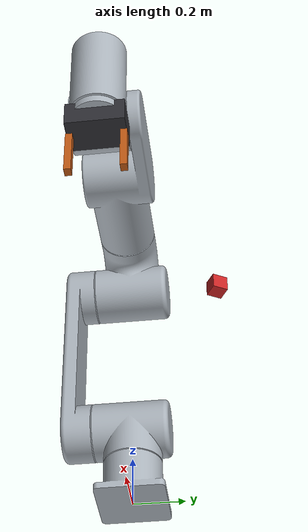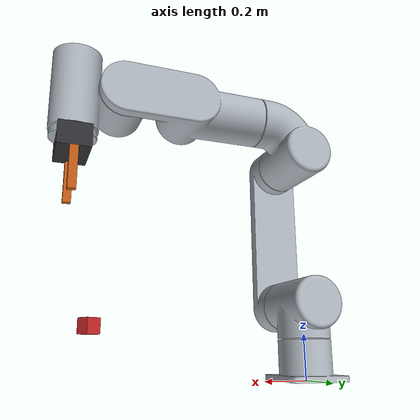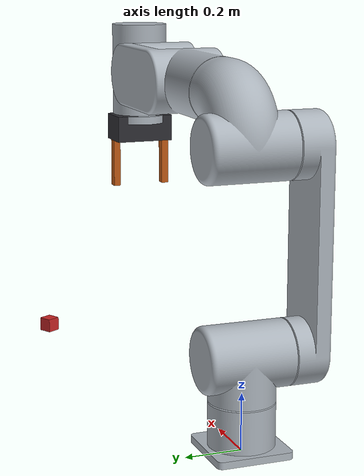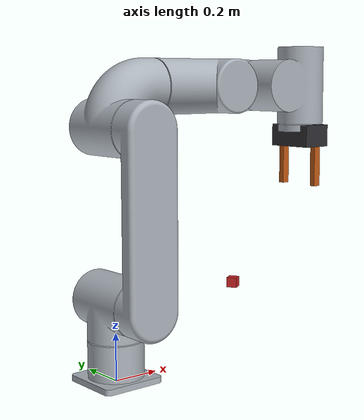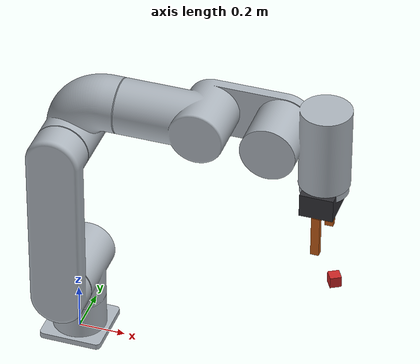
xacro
<robot name="rbt10" xmlns:xacro="http://www.ros.org/wiki/xacro">

  <xacro:arg name="initial_positions_file" default="$(find rbt10pkg_mit)/config/initial_positions.yaml"/>

  <xacro:include filename="$(find rbt08pkg)/urdf/rbt10.urdf"/>
  <xacro:include filename="rbt10.ros2_control.xacro"/>

  <xacro:rbt10_ros2_control
    name="FakeSystem"
    initial_positions_file="$(arg initial_positions_file)"/>

</robot>

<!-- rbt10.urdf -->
<robot name="rbt10" xmlns:xacro="http://www.ros.org/wiki/xacro">

<!-- questo è un commento -->
<xacro:include filename="$(find rbt08pkg)/urdf/rbt10.gazebo"/>
<xacro:include filename="$(find rbt08pkg)/urdf/gripper.urdf.xacro"/>

<!-- to include the camera plugin file -->
<!--xacro:include filename="$(find rbt08pkg)/urdf/camera.gazebo"/-->

<link name="world"></link>

<link name="base_link">
    <visual>
        <origin xyz="0 0 0" rpy="0 0 0"/>
        <geometry>
            <!--mesh filename="file://$(find rbt08pkg)/meshes/Exe070101Prt.dae"/-->
            <!--mesh filename="$(find rbt08pkg)/meshes/Exe070101Prt.dae"/-->
            <mesh filename="package://rbt08pkg/meshes/Exe070101Prt.dae"/>
        </geometry>
    </visual>

    <collision>
        <origin xyz="0 0 0" rpy="0 0 0"/>
        <geometry>
            <!--mesh filename="file://$(find rbt08pkg)/meshes/Exe070101Prt.dae"/-->
            <!--mesh filename="$(find rbt08pkg)/meshes/Exe070101Prt.dae"/-->
            <mesh filename="package://rbt08pkg/meshes/Exe070101Prt.dae"/>
        </geometry>
    </collision>

    <inertial>
        <origin xyz="0 0 0" rpy="0 0 0"/>
        <mass value="0.001" />
        <inertia ixx="0.001" ixy="0.0" ixz="0.0" iyy="0.001" iyz="0.0" izz="0.001" />
    </inertial>
</link>

<link name="link1">
    <visual>
        <origin xyz="0 0 0" rpy="0 0 0"/>
        <geometry>
            <!--mesh filename="file://$(find rbt08pkg)/meshes/Exe070102Prt.dae"/-->
            <!--mesh filename="$(find rbt08pkg)/meshes/Exe070102Prt.dae"/-->
            <mesh filename="package://rbt08pkg/meshes/Exe070102Prt.dae"/>
        </geometry>
    </visual>

    <collision>
        <origin xyz="0 0 0" rpy="0 0 0"/>
        <geometry>
            <!--mesh filename="file://$(find rbt08pkg)/meshes/Exe070102Prt.dae"/-->
            <!--mesh filename="$(find rbt08pkg)/meshes/Exe070102Prt.dae"/-->
            <mesh filename="package://rbt08pkg/meshes/Exe070102Prt.dae"/>
        </geometry>
    </collision>

    <inertial>
        <origin xyz="0 0 0" rpy="0 0 0"/>
        <mass value="0.001" />
        <inertia ixx="0.001" ixy="0.0" ixz="0.0" iyy="0.001" iyz="0.0" izz="0.001" />
    </inertial>

</link>

<link name="link2">
    <visual>
        <origin xyz="0 0 0" rpy="3.1416 0 0"/>
        <geometry>
            <!--mesh filename="file://$(find rbt08pkg)/meshes/Exe070103Prt.dae"/-->
            <!--mesh filename="$(find rbt08pkg)/meshes/Exe070103Prt.dae"/-->
            <mesh filename="package://rbt08pkg/meshes/Exe070103Prt.dae"/>
        </geometry>
    </visual>

    <collision>
        <origin xyz="0 0 0" rpy="3.1416 0 0"/>
        <geometry>
            <!--mesh filename="file://$(find rbt08pkg)/meshes/Exe070103Prt.dae"/-->
            <!--mesh filename="$(find rbt08pkg)/meshes/Exe070103Prt.dae"/-->
            <mesh filename="package://rbt08pkg/meshes/Exe070103Prt.dae"/>
        </geometry>
    </collision>

    <inertial>
        <origin xyz="0 0 0" rpy="0 0 0"/>
        <mass value="0.001" />
        <inertia ixx="0.001" ixy="0.0" ixz="0.0" iyy="0.001" iyz="0.0" izz="0.001" />
    </inertial>

</link>

<link name="link3">
    <visual>
        <origin xyz="0 0 0" rpy="1.5707 0 1.5707"/>
        <!--origin xyz="0 0 0" rpy="0 0 0"/-->
        <geometry>
            <!--mesh filename="file://$(find rbt08pkg)/meshes/Exe070104Prt.dae"/-->
            <!--mesh filename="$(find rbt08pkg)/meshes/Exe070104Prt.dae"/-->
            <mesh filename="package://rbt08pkg/meshes/Exe070104Prt.dae"/>
        </geometry>
    </visual>

    <collision>
        <origin xyz="0 0 0" rpy="1.5707 0 1.5707"/>
        <geometry>
            <!--mesh filename="file://$(find rbt08pkg)/meshes/Exe070104Prt.dae"/-->
            <!--mesh filename="$(find rbt08pkg)/meshes/Exe070104Prt.dae"/-->
            <mesh filename="package://rbt08pkg/meshes/Exe070104Prt.dae"/>
        </geometry>
    </collision>

    <inertial>
        <origin xyz="0 0 0" rpy="0 0 0"/>
        <mass value="0.001" />
        <inertia ixx="0.001" ixy="0.0" ixz="0.0" iyy="0.001" iyz="0.0" izz="0.001" />
    </inertial>

</link>

<link name="link4">
    <visual>
        <origin xyz="0 0 0" rpy="0 -1.5707 3.1416"/>
        <geometry>
            <!--mesh filename="file://$(find rbt08pkg)/meshes/Exe070105Prt.dae"/-->
            <!--mesh filename="$(find rbt08pkg)/meshes/Exe070105Prt.dae"/-->
            <mesh filename="package://rbt08pkg/meshes/Exe070105Prt.dae"/>
        </geometry>
    </visual>

    <collision>
        <origin xyz="0 0 0" rpy="0 -1.5707 3.1416"/>
        <geometry>
            <!--mesh filename="file://$(find rbt08pkg)/meshes/Exe070105Prt.dae"/-->
            <!--mesh filename="$(find rbt08pkg)/meshes/Exe070105Prt.dae"/-->
            <mesh filename="package://rbt08pkg/meshes/Exe070105Prt.dae"/>
        </geometry>
    </collision>

    <inertial>
        <origin xyz="0 0 0" rpy="0 0 0"/>
        <mass value="0.001" />
        <inertia ixx="0.001" ixy="0.0" ixz="0.0" iyy="0.001" iyz="0.0" izz="0.001" />
    </inertial>

</link>

<link name="link5">
    <visual>
        <origin xyz="0 0 0" rpy="-1.5707 0 0"/>
        <geometry>
            <!--mesh filename="file://$(find rbt08pkg)/meshes/Exe070106Prt.dae"/-->
            <!--mesh filename="$(find rbt08pkg)/meshes/Exe070106Prt.dae"/-->
            <mesh filename="package://rbt08pkg/meshes/Exe070106Prt.dae"/>
        </geometry>
    </visual>

    <collision>
        <origin xyz="0 0 0" rpy="-1.5707 0 0"/>
        <geometry>
            <!--mesh filename="file://$(find rbt08pkg)/meshes/Exe070106Prt.dae"/-->
            <!--mesh filename="$(find rbt08pkg)/meshes/Exe070106Prt.dae"/-->
            <mesh filename="package://rbt08pkg/meshes/Exe070106Prt.dae"/>
        </geometry>
    </collision>

    <inertial>
        <origin xyz="0 0 0" rpy="0 0 0"/>
        <mass value="0.001" />
        <inertia ixx="0.001" ixy="0.0" ixz="0.0" iyy="0.001" iyz="0.0" izz="0.001" />
    </inertial>

</link>

<link name="link6">
    <visual>
        <origin xyz="0 0 0" rpy="0 0 0"/>
        <geometry>
            <!--mesh filename="file://$(find rbt08pkg)/meshes/Exe070107Prt.dae"/-->
            <!--mesh filename="$(find rbt08pkg)/meshes/Exe070107Prt.dae"/-->
            <mesh filename="package://rbt08pkg/meshes/Exe070107Prt.dae"/>
        </geometry>
    </visual>

    <collision>
        <origin xyz="0 0 0" rpy="0 0 0"/>
        <geometry>
            <!--mesh filename="file://$(find rbt08pkg)/meshes/Exe070107Prt.dae"/-->
            <!--mesh filename="$(find rbt08pkg)/meshes/Exe070107Prt.dae"/-->
            <mesh filename="package://rbt08pkg/meshes/Exe070107Prt.dae"/>
        </geometry>
    </collision>

    <inertial>
        <origin xyz="0 0 0" rpy="0 0 0"/>
        <mass value="0.001" />
        <inertia ixx="0.001" ixy="0.0" ixz="0.0" iyy="0.001" iyz="0.0" izz="0.001" />
    </inertial>

</link>

<joint name="worldtobase" type="fixed">
    <parent link="world" />
    <child link="base_link" />
    <origin rpy="0 0 0" xyz="0 0 0" />
</joint>

<joint name="j1" type="revolute">
    <parent link="base_link"/>
    <child link="link1"/>
    <axis xyz="0 0 1"/>
    <limit effort="1000.0" lower="-3.1415" upper="3.1415" velocity="0.5"/>
    <origin rpy="0 0 0" xyz="0 0 0.18"/>
</joint>

<joint name="j2" type="revolute">
    <parent link="link1"/>
    <child link="link2"/>
    <axis xyz="0 0 1"/>
    <limit effort="100000.0" lower="-3.1415" upper="3.1415" velocity="0.5"/>
    <origin rpy="-1.5707 -1.5707 0" xyz="0 -0.155 0.15"/>
</joint>

<joint name="j3" type="revolute">
    <parent link="link2"/>
    <child link="link3"/>
    <axis xyz="0 0 1"/>
    <limit effort="100000.0" lower="-3.1415" upper="3.1415" velocity="0.5"/>
    <origin rpy="0 0 0" xyz="0.7 0 0.155"/>
</joint>

<joint name="j4" type="revolute">
    <parent link="link3"/>
    <child link="link4"/>
    <axis xyz="0 0 1"/>
    <limit effort="1000.0" lower="-3.1415" upper="3.1415" velocity="0.5"/>
    <origin rpy="-1.5707 0 0" xyz="0.16 0.205 0"/>
</joint>

<joint name="j5" type="revolute">
    <parent link="link4"/>
    <child link="link5"/>
    <axis xyz="0 0 1"/>
    <limit effort="1000.0" lower="-3.1415" upper="3.1415" velocity="0.5"/>
    <origin rpy="-1.5707 -1.5707 0" xyz="0 0 0.65"/>
</joint>

<joint name="j6" type="revolute">
    <parent link="link5"/>
    <child link="link6"/>
    <axis xyz="0 0 1"/>
    <limit effort="1000.0" lower="-3.1415" upper="3.1415" velocity="0.5"/>
    <origin rpy="1.5707 0 0" xyz="0.2 -0.18 0"/>
</joint>

<!-- STEP 12 - Table camera -->
<joint type="fixed" name="table_camera_joint">
    <origin xyz="1.0 0.4 0.2" rpy="0 0 3.6652"/>
    <child link="table_camera_link"/>
    <parent link="world"/>
</joint>

<joint type="fixed" name="table_camera_optical_joint">
    <origin xyz="0 0 0" rpy="-1.5707 0 -1.5707"/>
    <child link="table_camera_link_optical"/>
    <parent link="table_camera_link"/>
</joint>

<link name='table_camera_link'>
    <pose>0 0 0 0 0 0</pose>
    <visual>
      <origin xyz="0 0 0" rpy="0 0 0"/>
      <geometry>
        <box size=".05 .05 .05"/>
      </geometry>
      <material name="red"/>
    </visual>

    <inertial>
      <mass value="1.0e-03"/>
      <origin xyz="0 0 0" rpy="0 0 0"/>
      <inertia
          ixx="1e-6" ixy="0" ixz="0"
          iyy="1e-6" iyz="0"
          izz="1e-6"
      />
    </inertial>
</link>

<link name="table_camera_link_optical">
</link>

</robot>

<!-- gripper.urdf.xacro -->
<robot xmlns:xacro="http://www.ros.org/wiki/xacro">
  <link name="gripper_base_link">
    <visual>
      <origin xyz="0 0 0.05" rpy="0 0 0"/>
      <geometry><box size="0.14 0.22 0.10"/></geometry>
      <material name="gripper_dark"><color rgba="0.18 0.18 0.20 1"/></material>
    </visual>
    <collision name="gripper_base_collision">
      <origin xyz="0 0 0.05" rpy="0 0 0"/>
      <geometry><box size="0.14 0.22 0.10"/></geometry>
    </collision>
    <inertial>
      <origin xyz="0 0 0.05" rpy="0 0 0"/>
      <mass value="0.50"/>
      <inertia ixx="0.0015" ixy="0" ixz="0" iyy="0.0009" iyz="0" izz="0.0015"/>
    </inertial>
  </link>

  <joint name="gripper_mount_joint" type="fixed">
    <parent link="link6"/>
    <child link="gripper_base_link"/>
    <origin xyz="0 0 0" rpy="0 0 0"/>
  </joint>

  <link name="left_finger_link">
    <visual>
      <origin xyz="0 0 0.09" rpy="0 0 0"/>
      <geometry><box size="0.035 0.026 0.18"/></geometry>
      <material name="gripper_pad"><color rgba="0.75 0.35 0.08 1"/></material>
    </visual>
    <collision name="left_finger_collision">
      <origin xyz="0 0 0.09" rpy="0 0 0"/>
      <geometry><box size="0.035 0.026 0.18"/></geometry>
    </collision>
    <inertial>
      <origin xyz="0 0 0.09" rpy="0 0 0"/>
      <mass value="0.10"/>
      <inertia ixx="0.0003" ixy="0" ixz="0" iyy="0.0003" iyz="0" izz="0.00002"/>
    </inertial>
  </link>

  <joint name="left_finger_joint" type="prismatic">
    <parent link="gripper_base_link"/>
    <child link="left_finger_link"/>
    <origin xyz="0 0.10 0.10" rpy="0 0 0"/>
    <axis xyz="0 -1 0"/>
    <limit lower="0.0" upper="0.075" effort="40" velocity="0.03"/>
  </joint>

  <link name="right_finger_link">
    <visual>
      <origin xyz="0 0 0.09" rpy="0 0 0"/>
      <geometry><box size="0.035 0.026 0.18"/></geometry>
      <material name="gripper_pad"/>
    </visual>
    <collision name="right_finger_collision">
      <origin xyz="0 0 0.09" rpy="0 0 0"/>
      <geometry><box size="0.035 0.026 0.18"/></geometry>
    </collision>
    <inertial>
      <origin xyz="0 0 0.09" rpy="0 0 0"/>
      <mass value="0.10"/>
      <inertia ixx="0.0003" ixy="0" ixz="0" iyy="0.0003" iyz="0" izz="0.00002"/>
    </inertial>
  </link>

  <joint name="right_finger_joint" type="prismatic">
    <parent link="gripper_base_link"/>
    <child link="right_finger_link"/>
    <origin xyz="0 -0.10 0.10" rpy="0 0 0"/>
    <axis xyz="0 1 0"/>
    <limit lower="0.0" upper="0.075" effort="40" velocity="0.03"/>
  </joint>

  <!-- Centre of the grasp; use this frame as the target pose in MoveIt. -->
  <link name="grasp_frame"/>
  <joint name="grasp_frame_joint" type="fixed">
    <parent link="gripper_base_link"/>
    <child link="grasp_frame"/>
    <origin xyz="0 0 0.19" rpy="0 0 0"/>
  </joint>
</robot>
